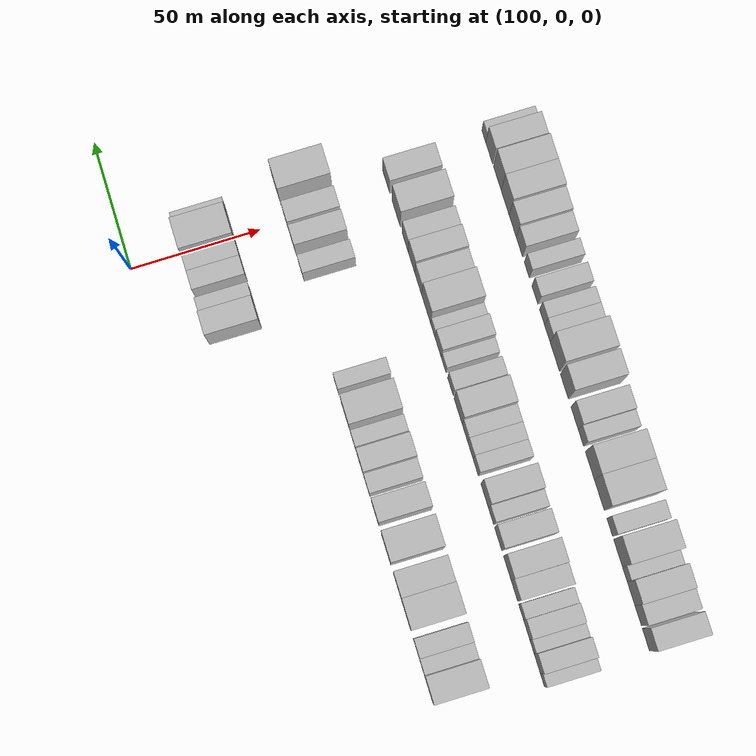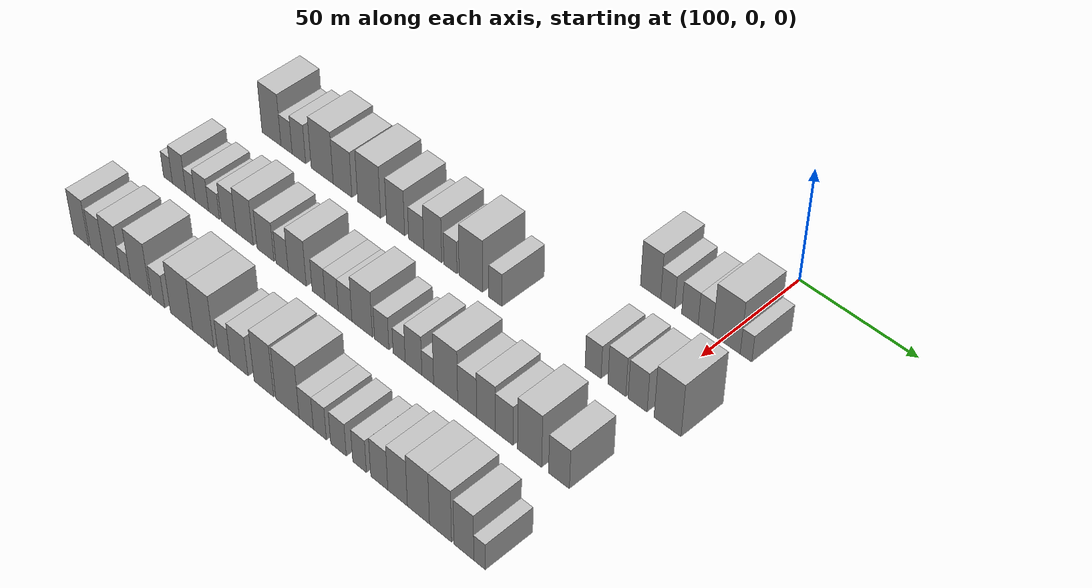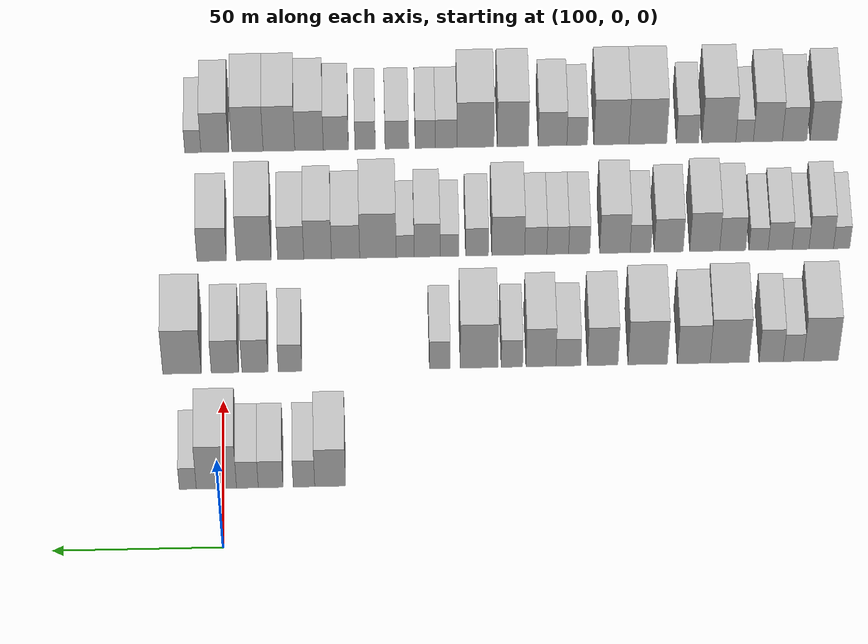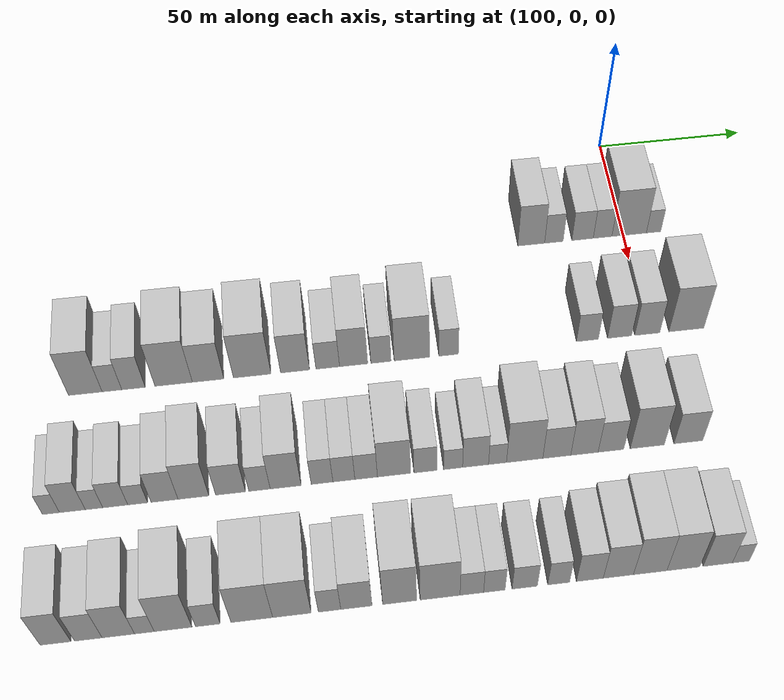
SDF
<sdf version="1.6">
 <world name="default">
  <model name="building_349">
   <static>1</static>
   <pose>130.0000 -31.3936 0 0.000000 0.000000 0.000000</pose>
   <link name="link">
    <pose>0 0 10.50 0 0 0</pose>
    <collision name="collision"><geometry><box><size>20.0000 9.1375 21.0000</size></box></geometry></collision>
    <visual name="visual">
     <cast_shadows>0</cast_shadows>
     <geometry><box><size>20.0000 9.1375 21.0000</size></box></geometry>
     <material>
      <script>
       <uri>model://HANNAS_wall/materials/scripts</uri>
       <uri>model://HANNAS_wall/materials/textures</uri>
       <name>vrc/HANNAS_wall</name>
      </script>
     </material>
    </visual>
   </link>
  </model>
  <model name="building_350">
   <static>1</static>
   <pose>130.0000 -23.6663 0 0.000000 0.000000 0.000000</pose>
   <link name="link">
    <pose>0 0 7.50 0 0 0</pose>
    <collision name="collision"><geometry><box><size>20.0000 6.3170 15.0000</size></box></geometry></collision>
    <visual name="visual">
     <cast_shadows>0</cast_shadows>
     <geometry><box><size>20.0000 6.3170 15.0000</size></box></geometry>
     <material>
      <script>
       <uri>model://HANNAS_wall/materials/scripts</uri>
       <uri>model://HANNAS_wall/materials/textures</uri>
       <name>vrc/HANNAS_wall</name>
      </script>
     </material>
    </visual>
   </link>
  </model>
  <model name="building_351">
   <static>1</static>
   <pose>130.0000 -13.8489 0 0.000000 0.000000 0.000000</pose>
   <link name="link">
    <pose>0 0 7.50 0 0 0</pose>
    <collision name="collision"><geometry><box><size>20.0000 7.3179 15.0000</size></box></geometry></collision>
    <visual name="visual">
     <cast_shadows>0</cast_shadows>
     <geometry><box><size>20.0000 7.3179 15.0000</size></box></geometry>
     <material>
      <script>
       <uri>model://HANNAS_wall/materials/scripts</uri>
       <uri>model://HANNAS_wall/materials/textures</uri>
       <name>vrc/HANNAS_wall</name>
      </script>
     </material>
    </visual>
   </link>
  </model>
  <model name="building_352">
   <static>1</static>
   <pose>130.0000 -6.9910 0 0.000000 0.000000 0.000000</pose>
   <link name="link">
    <pose>0 0 7.50 0 0 0</pose>
    <collision name="collision"><geometry><box><size>20.0000 6.3978 15.0000</size></box></geometry></collision>
    <visual name="visual">
     <cast_shadows>0</cast_shadows>
     <geometry><box><size>20.0000 6.3978 15.0000</size></box></geometry>
     <material>
      <script>
       <uri>model://HANNAS_wall/materials/scripts</uri>
       <uri>model://HANNAS_wall/materials/textures</uri>
       <name>vrc/HANNAS_wall</name>
      </script>
     </material>
    </visual>
   </link>
  </model>
  <model name="building_353">
   <static>1</static>
   <pose>130.0000 2.1304 0 0.000000 0.000000 0.000000</pose>
   <link name="link">
    <pose>0 0 12.00 0 0 0</pose>
    <collision name="collision"><geometry><box><size>20.0000 11.8450 24.0000</size></box></geometry></collision>
    <visual name="visual">
     <cast_shadows>0</cast_shadows>
     <geometry><box><size>20.0000 11.8450 24.0000</size></box></geometry>
     <material>
      <script>
       <uri>model://HANNAS_wall/materials/scripts</uri>
       <uri>model://HANNAS_wall/materials/textures</uri>
       <name>vrc/HANNAS_wall</name>
      </script>
     </material>
    </visual>
   </link>
  </model>
  <model name="building_354">
   <static>1</static>
   <pose>130.0000 10.5451 0 0.000000 0.000000 0.000000</pose>
   <link name="link">
    <pose>0 0 6.00 0 0 0</pose>
    <collision name="collision"><geometry><box><size>20.0000 4.9845 12.0000</size></box></geometry></collision>
    <visual name="visual">
     <cast_shadows>0</cast_shadows>
     <geometry><box><size>20.0000 4.9845 12.0000</size></box></geometry>
     <material>
      <script>
       <uri>model://HANNAS_wall/materials/scripts</uri>
       <uri>model://HANNAS_wall/materials/textures</uri>
       <name>vrc/HANNAS_wall</name>
      </script>
     </material>
    </visual>
   </link>
  </model>
  <model name="building_470">
   <static>1</static>
   <pose>170.0000 -178.7944 0 0.000000 0.000000 0.000000</pose>
   <link name="link">
    <pose>0 0 12.00 0 0 0</pose>
    <collision name="collision"><geometry><box><size>20.0000 10.3849 24.0000</size></box></geometry></collision>
    <visual name="visual">
     <cast_shadows>0</cast_shadows>
     <geometry><box><size>20.0000 10.3849 24.0000</size></box></geometry>
     <material>
      <script>
       <uri>model://HANNAS_wall/materials/scripts</uri>
       <uri>model://HANNAS_wall/materials/textures</uri>
       <name>vrc/HANNAS_wall</name>
      </script>
     </material>
    </visual>
   </link>
  </model>
  <model name="building_471">
   <static>1</static>
   <pose>170.0000 -170.5716 0 0.000000 0.000000 0.000000</pose>
   <link name="link">
    <pose>0 0 7.50 0 0 0</pose>
    <collision name="collision"><geometry><box><size>20.0000 6.0607 15.0000</size></box></geometry></collision>
    <visual name="visual">
     <cast_shadows>0</cast_shadows>
     <geometry><box><size>20.0000 6.0607 15.0000</size></box></geometry>
     <material>
      <script>
       <uri>model://HANNAS_wall/materials/scripts</uri>
       <uri>model://HANNAS_wall/materials/textures</uri>
       <name>vrc/HANNAS_wall</name>
      </script>
     </material>
    </visual>
   </link>
  </model>
  <model name="building_472">
   <static>1</static>
   <pose>170.0000 -163.9079 0 0.000000 0.000000 0.000000</pose>
   <link name="link">
    <pose>0 0 9.00 0 0 0</pose>
    <collision name="collision"><geometry><box><size>20.0000 7.2668 18.0000</size></box></geometry></collision>
    <visual name="visual">
     <cast_shadows>0</cast_shadows>
     <geometry><box><size>20.0000 7.2668 18.0000</size></box></geometry>
     <material>
      <script>
       <uri>model://HANNAS_wall/materials/scripts</uri>
       <uri>model://HANNAS_wall/materials/textures</uri>
       <name>vrc/HANNAS_wall</name>
      </script>
     </material>
    </visual>
   </link>
  </model>
  <model name="building_473">
   <static>1</static>
   <pose>170.0000 -151.4322 0 0.000000 0.000000 0.000000</pose>
   <link name="link">
    <pose>0 0 12.00 0 0 0</pose>
    <collision name="collision"><geometry><box><size>20.0000 11.6845 24.0000</size></box></geometry></collision>
    <visual name="visual">
     <cast_shadows>0</cast_shadows>
     <geometry><box><size>20.0000 11.6845 24.0000</size></box></geometry>
     <material>
      <script>
       <uri>model://HANNAS_wall/materials/scripts</uri>
       <uri>model://HANNAS_wall/materials/textures</uri>
       <name>vrc/HANNAS_wall</name>
      </script>
     </material>
    </visual>
   </link>
  </model>
  <model name="building_474">
   <static>1</static>
   <pose>170.0000 -140.6809 0 0.000000 0.000000 0.000000</pose>
   <link name="link">
    <pose>0 0 10.50 0 0 0</pose>
    <collision name="collision"><geometry><box><size>20.0000 9.8181 21.0000</size></box></geometry></collision>
    <visual name="visual">
     <cast_shadows>0</cast_shadows>
     <geometry><box><size>20.0000 9.8181 21.0000</size></box></geometry>
     <material>
      <script>
       <uri>model://HANNAS_wall/materials/scripts</uri>
       <uri>model://HANNAS_wall/materials/textures</uri>
       <name>vrc/HANNAS_wall</name>
      </script>
     </material>
    </visual>
   </link>
  </model>
  <model name="building_475">
   <static>1</static>
   <pose>170.0000 -126.8696 0 0.000000 0.000000 0.000000</pose>
   <link name="link">
    <pose>0 0 12.00 0 0 0</pose>
    <collision name="collision"><geometry><box><size>20.0000 11.8046 24.0000</size></box></geometry></collision>
    <visual name="visual">
     <cast_shadows>0</cast_shadows>
     <geometry><box><size>20.0000 11.8046 24.0000</size></box></geometry>
     <material>
      <script>
       <uri>model://HANNAS_wall/materials/scripts</uri>
       <uri>model://HANNAS_wall/materials/textures</uri>
       <name>vrc/HANNAS_wall</name>
      </script>
     </material>
    </visual>
   </link>
  </model>
  <model name="building_476">
   <static>1</static>
   <pose>170.0000 -113.3914 0 0.000000 0.000000 0.000000</pose>
   <link name="link">
    <pose>0 0 10.50 0 0 0</pose>
    <collision name="collision"><geometry><box><size>20.0000 9.1517 21.0000</size></box></geometry></collision>
    <visual name="visual">
     <cast_shadows>0</cast_shadows>
     <geometry><box><size>20.0000 9.1517 21.0000</size></box></geometry>
     <material>
      <script>
       <uri>model://HANNAS_wall/materials/scripts</uri>
       <uri>model://HANNAS_wall/materials/textures</uri>
       <name>vrc/HANNAS_wall</name>
      </script>
     </material>
    </visual>
   </link>
  </model>
  <model name="building_477">
   <static>1</static>
   <pose>170.0000 -103.0781 0 0.000000 0.000000 0.000000</pose>
   <link name="link">
    <pose>0 0 7.50 0 0 0</pose>
    <collision name="collision"><geometry><box><size>20.0000 7.4750 15.0000</size></box></geometry></collision>
    <visual name="visual">
     <cast_shadows>0</cast_shadows>
     <geometry><box><size>20.0000 7.4750 15.0000</size></box></geometry>
     <material>
      <script>
       <uri>model://HANNAS_wall/materials/scripts</uri>
       <uri>model://HANNAS_wall/materials/textures</uri>
       <name>vrc/HANNAS_wall</name>
      </script>
     </material>
    </visual>
   </link>
  </model>
  <model name="building_478">
   <static>1</static>
   <pose>170.0000 -94.8814 0 0.000000 0.000000 0.000000</pose>
   <link name="link">
    <pose>0 0 10.50 0 0 0</pose>
    <collision name="collision"><geometry><box><size>20.0000 8.9184 21.0000</size></box></geometry></collision>
    <visual name="visual">
     <cast_shadows>0</cast_shadows>
     <geometry><box><size>20.0000 8.9184 21.0000</size></box></geometry>
     <material>
      <script>
       <uri>model://HANNAS_wall/materials/scripts</uri>
       <uri>model://HANNAS_wall/materials/textures</uri>
       <name>vrc/HANNAS_wall</name>
      </script>
     </material>
    </visual>
   </link>
  </model>
  <model name="building_479">
   <static>1</static>
   <pose>170.0000 -86.2132 0 0.000000 0.000000 0.000000</pose>
   <link name="link">
    <pose>0 0 7.50 0 0 0</pose>
    <collision name="collision"><geometry><box><size>20.0000 6.4179 15.0000</size></box></geometry></collision>
    <visual name="visual">
     <cast_shadows>0</cast_shadows>
     <geometry><box><size>20.0000 6.4179 15.0000</size></box></geometry>
     <material>
      <script>
       <uri>model://HANNAS_wall/materials/scripts</uri>
       <uri>model://HANNAS_wall/materials/textures</uri>
       <name>vrc/HANNAS_wall</name>
      </script>
     </material>
    </visual>
   </link>
  </model>
  <model name="building_480">
   <static>1</static>
   <pose>170.0000 -76.3751 0 0.000000 0.000000 0.000000</pose>
   <link name="link">
    <pose>0 0 12.00 0 0 0</pose>
    <collision name="collision"><geometry><box><size>20.0000 11.2582 24.0000</size></box></geometry></collision>
    <visual name="visual">
     <cast_shadows>0</cast_shadows>
     <geometry><box><size>20.0000 11.2582 24.0000</size></box></geometry>
     <material>
      <script>
       <uri>model://HANNAS_wall/materials/scripts</uri>
       <uri>model://HANNAS_wall/materials/textures</uri>
       <name>vrc/HANNAS_wall</name>
      </script>
     </material>
    </visual>
   </link>
  </model>
  <model name="building_481">
   <static>1</static>
   <pose>170.0000 -64.6272 0 0.000000 0.000000 0.000000</pose>
   <link name="link">
    <pose>0 0 7.50 0 0 0</pose>
    <collision name="collision"><geometry><box><size>20.0000 6.2377 15.0000</size></box></geometry></collision>
    <visual name="visual">
     <cast_shadows>0</cast_shadows>
     <geometry><box><size>20.0000 6.2377 15.0000</size></box></geometry>
     <material>
      <script>
       <uri>model://HANNAS_wall/materials/scripts</uri>
       <uri>model://HANNAS_wall/materials/textures</uri>
       <name>vrc/HANNAS_wall</name>
      </script>
     </material>
    </visual>
   </link>
  </model>
  <model name="building_482">
   <static>1</static>
   <pose>170.0000 -19.8377 0 0.000000 0.000000 0.000000</pose>
   <link name="link">
    <pose>0 0 7.50 0 0 0</pose>
    <collision name="collision"><geometry><box><size>20.0000 7.1137 15.0000</size></box></geometry></collision>
    <visual name="visual">
     <cast_shadows>0</cast_shadows>
     <geometry><box><size>20.0000 7.1137 15.0000</size></box></geometry>
     <material>
      <script>
       <uri>model://HANNAS_wall/materials/scripts</uri>
       <uri>model://HANNAS_wall/materials/textures</uri>
       <name>vrc/HANNAS_wall</name>
      </script>
     </material>
    </visual>
   </link>
  </model>
  <model name="building_483">
   <static>1</static>
   <pose>170.0000 -9.3488 0 0.000000 0.000000 0.000000</pose>
   <link name="link">
    <pose>0 0 9.00 0 0 0</pose>
    <collision name="collision"><geometry><box><size>20.0000 7.8642 18.0000</size></box></geometry></collision>
    <visual name="visual">
     <cast_shadows>0</cast_shadows>
     <geometry><box><size>20.0000 7.8642 18.0000</size></box></geometry>
     <material>
      <script>
       <uri>model://HANNAS_wall/materials/scripts</uri>
       <uri>model://HANNAS_wall/materials/textures</uri>
       <name>vrc/HANNAS_wall</name>
      </script>
     </material>
    </visual>
   </link>
  </model>
  <model name="building_484">
   <static>1</static>
   <pose>170.0000 -0.3206 0 0.000000 0.000000 0.000000</pose>
   <link name="link">
    <pose>0 0 9.00 0 0 0</pose>
    <collision name="collision"><geometry><box><size>20.0000 8.1921 18.0000</size></box></geometry></collision>
    <visual name="visual">
     <cast_shadows>0</cast_shadows>
     <geometry><box><size>20.0000 8.1921 18.0000</size></box></geometry>
     <material>
      <script>
       <uri>model://HANNAS_wall/materials/scripts</uri>
       <uri>model://HANNAS_wall/materials/textures</uri>
       <name>vrc/HANNAS_wall</name>
      </script>
     </material>
    </visual>
   </link>
  </model>
  <model name="building_485">
   <static>1</static>
   <pose>170.0000 12.5129 0 0.000000 0.000000 0.000000</pose>
   <link name="link">
    <pose>0 0 12.00 0 0 0</pose>
    <collision name="collision"><geometry><box><size>20.0000 11.4749 24.0000</size></box></geometry></collision>
    <visual name="visual">
     <cast_shadows>0</cast_shadows>
     <geometry><box><size>20.0000 11.4749 24.0000</size></box></geometry>
     <material>
      <script>
       <uri>model://HANNAS_wall/materials/scripts</uri>
       <uri>model://HANNAS_wall/materials/textures</uri>
       <name>vrc/HANNAS_wall</name>
      </script>
     </material>
    </visual>
   </link>
  </model>
  <model name="building_598">
   <static>1</static>
   <pose>210.0000 -187.8631 0 0.000000 0.000000 0.000000</pose>
   <link name="link">
    <pose>0 0 6.00 0 0 0</pose>
    <collision name="collision"><geometry><box><size>20.0000 4.9526 12.0000</size></box></geometry></collision>
    <visual name="visual">
     <cast_shadows>0</cast_shadows>
     <geometry><box><size>20.0000 4.9526 12.0000</size></box></geometry>
     <material>
      <script>
       <uri>model://HANNAS_wall/materials/scripts</uri>
       <uri>model://HANNAS_wall/materials/textures</uri>
       <name>vrc/HANNAS_wall</name>
      </script>
     </material>
    </visual>
   </link>
  </model>
  <model name="building_599">
   <static>1</static>
   <pose>210.0000 -181.6386 0 0.000000 0.000000 0.000000</pose>
   <link name="link">
    <pose>0 0 9.00 0 0 0</pose>
    <collision name="collision"><geometry><box><size>20.0000 7.4965 18.0000</size></box></geometry></collision>
    <visual name="visual">
     <cast_shadows>0</cast_shadows>
     <geometry><box><size>20.0000 7.4965 18.0000</size></box></geometry>
     <material>
      <script>
       <uri>model://HANNAS_wall/materials/scripts</uri>
       <uri>model://HANNAS_wall/materials/textures</uri>
       <name>vrc/HANNAS_wall</name>
      </script>
     </material>
    </visual>
   </link>
  </model>
  <model name="building_600">
   <static>1</static>
   <pose>210.0000 -175.3336 0 0.000000 0.000000 0.000000</pose>
   <link name="link">
    <pose>0 0 6.00 0 0 0</pose>
    <collision name="collision"><geometry><box><size>20.0000 5.1136 12.0000</size></box></geometry></collision>
    <visual name="visual">
     <cast_shadows>0</cast_shadows>
     <geometry><box><size>20.0000 5.1136 12.0000</size></box></geometry>
     <material>
      <script>
       <uri>model://HANNAS_wall/materials/scripts</uri>
       <uri>model://HANNAS_wall/materials/textures</uri>
       <name>vrc/HANNAS_wall</name>
      </script>
     </material>
    </visual>
   </link>
  </model>
  <model name="building_601">
   <static>1</static>
   <pose>210.0000 -169.1165 0 0.000000 0.000000 0.000000</pose>
   <link name="link">
    <pose>0 0 7.50 0 0 0</pose>
    <collision name="collision"><geometry><box><size>20.0000 7.3206 15.0000</size></box></geometry></collision>
    <visual name="visual">
     <cast_shadows>0</cast_shadows>
     <geometry><box><size>20.0000 7.3206 15.0000</size></box></geometry>
     <material>
      <script>
       <uri>model://HANNAS_wall/materials/scripts</uri>
       <uri>model://HANNAS_wall/materials/textures</uri>
       <name>vrc/HANNAS_wall</name>
      </script>
     </material>
    </visual>
   </link>
  </model>
  <model name="building_602">
   <static>1</static>
   <pose>210.0000 -162.5438 0 0.000000 0.000000 0.000000</pose>
   <link name="link">
    <pose>0 0 6.00 0 0 0</pose>
    <collision name="collision"><geometry><box><size>20.0000 5.8247 12.0000</size></box></geometry></collision>
    <visual name="visual">
     <cast_shadows>0</cast_shadows>
     <geometry><box><size>20.0000 5.8247 12.0000</size></box></geometry>
     <material>
      <script>
       <uri>model://HANNAS_wall/materials/scripts</uri>
       <uri>model://HANNAS_wall/materials/textures</uri>
       <name>vrc/HANNAS_wall</name>
      </script>
     </material>
    </visual>
   </link>
  </model>
  <model name="building_603">
   <static>1</static>
   <pose>210.0000 -154.6650 0 0.000000 0.000000 0.000000</pose>
   <link name="link">
    <pose>0 0 9.00 0 0 0</pose>
    <collision name="collision"><geometry><box><size>20.0000 7.9329 18.0000</size></box></geometry></collision>
    <visual name="visual">
     <cast_shadows>0</cast_shadows>
     <geometry><box><size>20.0000 7.9329 18.0000</size></box></geometry>
     <material>
      <script>
       <uri>model://HANNAS_wall/materials/scripts</uri>
       <uri>model://HANNAS_wall/materials/textures</uri>
       <name>vrc/HANNAS_wall</name>
      </script>
     </material>
    </visual>
   </link>
  </model>
  <model name="building_604">
   <static>1</static>
   <pose>210.0000 -146.1417 0 0.000000 0.000000 0.000000</pose>
   <link name="link">
    <pose>0 0 10.50 0 0 0</pose>
    <collision name="collision"><geometry><box><size>20.0000 9.1138 21.0000</size></box></geometry></collision>
    <visual name="visual">
     <cast_shadows>0</cast_shadows>
     <geometry><box><size>20.0000 9.1138 21.0000</size></box></geometry>
     <material>
      <script>
       <uri>model://HANNAS_wall/materials/scripts</uri>
       <uri>model://HANNAS_wall/materials/textures</uri>
       <name>vrc/HANNAS_wall</name>
      </script>
     </material>
    </visual>
   </link>
  </model>
  <model name="building_605">
   <static>1</static>
   <pose>210.0000 -135.1656 0 0.000000 0.000000 0.000000</pose>
   <link name="link">
    <pose>0 0 9.00 0 0 0</pose>
    <collision name="collision"><geometry><box><size>20.0000 8.8383 18.0000</size></box></geometry></collision>
    <visual name="visual">
     <cast_shadows>0</cast_shadows>
     <geometry><box><size>20.0000 8.8383 18.0000</size></box></geometry>
     <material>
      <script>
       <uri>model://HANNAS_wall/materials/scripts</uri>
       <uri>model://HANNAS_wall/materials/textures</uri>
       <name>vrc/HANNAS_wall</name>
      </script>
     </material>
    </visual>
   </link>
  </model>
  <model name="building_606">
   <static>1</static>
   <pose>210.0000 -126.5722 0 0.000000 0.000000 0.000000</pose>
   <link name="link">
    <pose>0 0 7.50 0 0 0</pose>
    <collision name="collision"><geometry><box><size>20.0000 6.3486 15.0000</size></box></geometry></collision>
    <visual name="visual">
     <cast_shadows>0</cast_shadows>
     <geometry><box><size>20.0000 6.3486 15.0000</size></box></geometry>
     <material>
      <script>
       <uri>model://HANNAS_wall/materials/scripts</uri>
       <uri>model://HANNAS_wall/materials/textures</uri>
       <name>vrc/HANNAS_wall</name>
      </script>
     </material>
    </visual>
   </link>
  </model>
  <model name="building_607">
   <static>1</static>
   <pose>210.0000 -118.7902 0 0.000000 0.000000 0.000000</pose>
   <link name="link">
    <pose>0 0 10.50 0 0 0</pose>
    <collision name="collision"><geometry><box><size>20.0000 9.2154 21.0000</size></box></geometry></collision>
    <visual name="visual">
     <cast_shadows>0</cast_shadows>
     <geometry><box><size>20.0000 9.2154 21.0000</size></box></geometry>
     <material>
      <script>
       <uri>model://HANNAS_wall/materials/scripts</uri>
       <uri>model://HANNAS_wall/materials/textures</uri>
       <name>vrc/HANNAS_wall</name>
      </script>
     </material>
    </visual>
   </link>
  </model>
  <model name="building_608">
   <static>1</static>
   <pose>210.0000 -107.9401 0 0.000000 0.000000 0.000000</pose>
   <link name="link">
    <pose>0 0 7.50 0 0 0</pose>
    <collision name="collision"><geometry><box><size>20.0000 6.4849 15.0000</size></box></geometry></collision>
    <visual name="visual">
     <cast_shadows>0</cast_shadows>
     <geometry><box><size>20.0000 6.4849 15.0000</size></box></geometry>
     <material>
      <script>
       <uri>model://HANNAS_wall/materials/scripts</uri>
       <uri>model://HANNAS_wall/materials/textures</uri>
       <name>vrc/HANNAS_wall</name>
      </script>
     </material>
    </visual>
   </link>
  </model>
  <model name="building_609">
   <static>1</static>
   <pose>210.0000 -101.4058 0 0.000000 0.000000 0.000000</pose>
   <link name="link">
    <pose>0 0 7.50 0 0 0</pose>
    <collision name="collision"><geometry><box><size>20.0000 6.5837 15.0000</size></box></geometry></collision>
    <visual name="visual">
     <cast_shadows>0</cast_shadows>
     <geometry><box><size>20.0000 6.5837 15.0000</size></box></geometry>
     <material>
      <script>
       <uri>model://HANNAS_wall/materials/scripts</uri>
       <uri>model://HANNAS_wall/materials/textures</uri>
       <name>vrc/HANNAS_wall</name>
      </script>
     </material>
    </visual>
   </link>
  </model>
  <model name="building_610">
   <static>1</static>
   <pose>210.0000 -94.7305 0 0.000000 0.000000 0.000000</pose>
   <link name="link">
    <pose>0 0 7.50 0 0 0</pose>
    <collision name="collision"><geometry><box><size>20.0000 6.7668 15.0000</size></box></geometry></collision>
    <visual name="visual">
     <cast_shadows>0</cast_shadows>
     <geometry><box><size>20.0000 6.7668 15.0000</size></box></geometry>
     <material>
      <script>
       <uri>model://HANNAS_wall/materials/scripts</uri>
       <uri>model://HANNAS_wall/materials/textures</uri>
       <name>vrc/HANNAS_wall</name>
      </script>
     </material>
    </visual>
   </link>
  </model>
  <model name="building_611">
   <static>1</static>
   <pose>210.0000 -86.3413 0 0.000000 0.000000 0.000000</pose>
   <link name="link">
    <pose>0 0 10.50 0 0 0</pose>
    <collision name="collision"><geometry><box><size>20.0000 10.0115 21.0000</size></box></geometry></collision>
    <visual name="visual">
     <cast_shadows>0</cast_shadows>
     <geometry><box><size>20.0000 10.0115 21.0000</size></box></geometry>
     <material>
      <script>
       <uri>model://HANNAS_wall/materials/scripts</uri>
       <uri>model://HANNAS_wall/materials/textures</uri>
       <name>vrc/HANNAS_wall</name>
      </script>
     </material>
    </visual>
   </link>
  </model>
  <model name="building_612">
   <static>1</static>
   <pose>210.0000 -76.8689 0 0.000000 0.000000 0.000000</pose>
   <link name="link">
    <pose>0 0 7.50 0 0 0</pose>
    <collision name="collision"><geometry><box><size>20.0000 6.9334 15.0000</size></box></geometry></collision>
    <visual name="visual">
     <cast_shadows>0</cast_shadows>
     <geometry><box><size>20.0000 6.9334 15.0000</size></box></geometry>
     <material>
      <script>
       <uri>model://HANNAS_wall/materials/scripts</uri>
       <uri>model://HANNAS_wall/materials/textures</uri>
       <name>vrc/HANNAS_wall</name>
      </script>
     </material>
    </visual>
   </link>
  </model>
  <model name="building_613">
   <static>1</static>
   <pose>210.0000 -68.5113 0 0.000000 0.000000 0.000000</pose>
   <link name="link">
    <pose>0 0 6.00 0 0 0</pose>
    <collision name="collision"><geometry><box><size>20.0000 5.7816 12.0000</size></box></geometry></collision>
    <visual name="visual">
     <cast_shadows>0</cast_shadows>
     <geometry><box><size>20.0000 5.7816 12.0000</size></box></geometry>
     <material>
      <script>
       <uri>model://HANNAS_wall/materials/scripts</uri>
       <uri>model://HANNAS_wall/materials/textures</uri>
       <name>vrc/HANNAS_wall</name>
      </script>
     </material>
    </visual>
   </link>
  </model>
  <model name="building_614">
   <static>1</static>
   <pose>210.0000 -61.6804 0 0.000000 0.000000 0.000000</pose>
   <link name="link">
    <pose>0 0 9.00 0 0 0</pose>
    <collision name="collision"><geometry><box><size>20.0000 7.8803 18.0000</size></box></geometry></collision>
    <visual name="visual">
     <cast_shadows>0</cast_shadows>
     <geometry><box><size>20.0000 7.8803 18.0000</size></box></geometry>
     <material>
      <script>
       <uri>model://HANNAS_wall/materials/scripts</uri>
       <uri>model://HANNAS_wall/materials/textures</uri>
       <name>vrc/HANNAS_wall</name>
      </script>
     </material>
    </visual>
   </link>
  </model>
  <model name="building_615">
   <static>1</static>
   <pose>210.0000 -55.0049 0 0.000000 0.000000 0.000000</pose>
   <link name="link">
    <pose>0 0 6.00 0 0 0</pose>
    <collision name="collision"><geometry><box><size>20.0000 5.4707 12.0000</size></box></geometry></collision>
    <visual name="visual">
     <cast_shadows>0</cast_shadows>
     <geometry><box><size>20.0000 5.4707 12.0000</size></box></geometry>
     <material>
      <script>
       <uri>model://HANNAS_wall/materials/scripts</uri>
       <uri>model://HANNAS_wall/materials/textures</uri>
       <name>vrc/HANNAS_wall</name>
      </script>
     </material>
    </visual>
   </link>
  </model>
  <model name="building_616">
   <static>1</static>
   <pose>210.0000 -46.7229 0 0.000000 0.000000 0.000000</pose>
   <link name="link">
    <pose>0 0 12.00 0 0 0</pose>
    <collision name="collision"><geometry><box><size>20.0000 11.0932 24.0000</size></box></geometry></collision>
    <visual name="visual">
     <cast_shadows>0</cast_shadows>
     <geometry><box><size>20.0000 11.0932 24.0000</size></box></geometry>
     <material>
      <script>
       <uri>model://HANNAS_wall/materials/scripts</uri>
       <uri>model://HANNAS_wall/materials/textures</uri>
       <name>vrc/HANNAS_wall</name>
      </script>
     </material>
    </visual>
   </link>
  </model>
  <model name="building_617">
   <static>1</static>
   <pose>210.0000 -36.8878 0 0.000000 0.000000 0.000000</pose>
   <link name="link">
    <pose>0 0 9.00 0 0 0</pose>
    <collision name="collision"><geometry><box><size>20.0000 8.5770 18.0000</size></box></geometry></collision>
    <visual name="visual">
     <cast_shadows>0</cast_shadows>
     <geometry><box><size>20.0000 8.5770 18.0000</size></box></geometry>
     <material>
      <script>
       <uri>model://HANNAS_wall/materials/scripts</uri>
       <uri>model://HANNAS_wall/materials/textures</uri>
       <name>vrc/HANNAS_wall</name>
      </script>
     </material>
    </visual>
   </link>
  </model>
  <model name="building_618">
   <static>1</static>
   <pose>210.0000 -28.3944 0 0.000000 0.000000 0.000000</pose>
   <link name="link">
    <pose>0 0 10.50 0 0 0</pose>
    <collision name="collision"><geometry><box><size>20.0000 8.4099 21.0000</size></box></geometry></collision>
    <visual name="visual">
     <cast_shadows>0</cast_shadows>
     <geometry><box><size>20.0000 8.4099 21.0000</size></box></geometry>
     <material>
      <script>
       <uri>model://HANNAS_wall/materials/scripts</uri>
       <uri>model://HANNAS_wall/materials/textures</uri>
       <name>vrc/HANNAS_wall</name>
      </script>
     </material>
    </visual>
   </link>
  </model>
  <model name="building_619">
   <static>1</static>
   <pose>210.0000 -20.2342 0 0.000000 0.000000 0.000000</pose>
   <link name="link">
    <pose>0 0 9.00 0 0 0</pose>
    <collision name="collision"><geometry><box><size>20.0000 7.9104 18.0000</size></box></geometry></collision>
    <visual name="visual">
     <cast_shadows>0</cast_shadows>
     <geometry><box><size>20.0000 7.9104 18.0000</size></box></geometry>
     <material>
      <script>
       <uri>model://HANNAS_wall/materials/scripts</uri>
       <uri>model://HANNAS_wall/materials/textures</uri>
       <name>vrc/HANNAS_wall</name>
      </script>
     </material>
    </visual>
   </link>
  </model>
  <model name="building_620">
   <static>1</static>
   <pose>210.0000 -9.0103 0 0.000000 0.000000 0.000000</pose>
   <link name="link">
    <pose>0 0 12.00 0 0 0</pose>
    <collision name="collision"><geometry><box><size>20.0000 10.5374 24.0000</size></box></geometry></collision>
    <visual name="visual">
     <cast_shadows>0</cast_shadows>
     <geometry><box><size>20.0000 10.5374 24.0000</size></box></geometry>
     <material>
      <script>
       <uri>model://HANNAS_wall/materials/scripts</uri>
       <uri>model://HANNAS_wall/materials/textures</uri>
       <name>vrc/HANNAS_wall</name>
      </script>
     </material>
    </visual>
   </link>
  </model>
  <model name="building_621">
   <static>1</static>
   <pose>210.0000 3.7434 0 0.000000 0.000000 0.000000</pose>
   <link name="link">
    <pose>0 0 9.00 0 0 0</pose>
    <collision name="collision"><geometry><box><size>20.0000 8.9698 18.0000</size></box></geometry></collision>
    <visual name="visual">
     <cast_shadows>0</cast_shadows>
     <geometry><box><size>20.0000 8.9698 18.0000</size></box></geometry>
     <material>
      <script>
       <uri>model://HANNAS_wall/materials/scripts</uri>
       <uri>model://HANNAS_wall/materials/textures</uri>
       <name>vrc/HANNAS_wall</name>
      </script>
     </material>
    </visual>
   </link>
  </model>
  <model name="building_729">
   <static>1</static>
   <pose>250.0000 -185.1196 0 0.000000 0.000000 0.000000</pose>
   <link name="link">
    <pose>0 0 10.50 0 0 0</pose>
    <collision name="collision"><geometry><box><size>20.0000 8.4349 21.0000</size></box></geometry></collision>
    <visual name="visual">
     <cast_shadows>0</cast_shadows>
     <geometry><box><size>20.0000 8.4349 21.0000</size></box></geometry>
     <material>
      <script>
       <uri>model://HANNAS_wall/materials/scripts</uri>
       <uri>model://HANNAS_wall/materials/textures</uri>
       <name>vrc/HANNAS_wall</name>
      </script>
     </material>
    </visual>
   </link>
  </model>
  <model name="building_730">
   <static>1</static>
   <pose>250.0000 -176.1088 0 0.000000 0.000000 0.000000</pose>
   <link name="link">
    <pose>0 0 9.00 0 0 0</pose>
    <collision name="collision"><geometry><box><size>20.0000 7.5868 18.0000</size></box></geometry></collision>
    <visual name="visual">
     <cast_shadows>0</cast_shadows>
     <geometry><box><size>20.0000 7.5868 18.0000</size></box></geometry>
     <material>
      <script>
       <uri>model://HANNAS_wall/materials/scripts</uri>
       <uri>model://HANNAS_wall/materials/textures</uri>
       <name>vrc/HANNAS_wall</name>
      </script>
     </material>
    </visual>
   </link>
  </model>
  <model name="building_731">
   <static>1</static>
   <pose>250.0000 -167.8354 0 0.000000 0.000000 0.000000</pose>
   <link name="link">
    <pose>0 0 10.50 0 0 0</pose>
    <collision name="collision"><geometry><box><size>20.0000 8.9598 21.0000</size></box></geometry></collision>
    <visual name="visual">
     <cast_shadows>0</cast_shadows>
     <geometry><box><size>20.0000 8.9598 21.0000</size></box></geometry>
     <material>
      <script>
       <uri>model://HANNAS_wall/materials/scripts</uri>
       <uri>model://HANNAS_wall/materials/textures</uri>
       <name>vrc/HANNAS_wall</name>
      </script>
     </material>
    </visual>
   </link>
  </model>
  <model name="building_732">
   <static>1</static>
   <pose>250.0000 -160.6302 0 0.000000 0.000000 0.000000</pose>
   <link name="link">
    <pose>0 0 6.00 0 0 0</pose>
    <collision name="collision"><geometry><box><size>20.0000 5.4507 12.0000</size></box></geometry></collision>
    <visual name="visual">
     <cast_shadows>0</cast_shadows>
     <geometry><box><size>20.0000 5.4507 12.0000</size></box></geometry>
     <material>
      <script>
       <uri>model://HANNAS_wall/materials/scripts</uri>
       <uri>model://HANNAS_wall/materials/textures</uri>
       <name>vrc/HANNAS_wall</name>
      </script>
     </material>
    </visual>
   </link>
  </model>
  <model name="building_733">
   <static>1</static>
   <pose>250.0000 -152.6688 0 0.000000 0.000000 0.000000</pose>
   <link name="link">
    <pose>0 0 12.00 0 0 0</pose>
    <collision name="collision"><geometry><box><size>20.0000 10.4721 24.0000</size></box></geometry></collision>
    <visual name="visual">
     <cast_shadows>0</cast_shadows>
     <geometry><box><size>20.0000 10.4721 24.0000</size></box></geometry>
     <material>
      <script>
       <uri>model://HANNAS_wall/materials/scripts</uri>
       <uri>model://HANNAS_wall/materials/textures</uri>
       <name>vrc/HANNAS_wall</name>
      </script>
     </material>
    </visual>
   </link>
  </model>
  <model name="building_734">
   <static>1</static>
   <pose>250.0000 -142.9962 0 0.000000 0.000000 0.000000</pose>
   <link name="link">
    <pose>0 0 7.50 0 0 0</pose>
    <collision name="collision"><geometry><box><size>20.0000 6.8733 15.0000</size></box></geometry></collision>
    <visual name="visual">
     <cast_shadows>0</cast_shadows>
     <geometry><box><size>20.0000 6.8733 15.0000</size></box></geometry>
     <material>
      <script>
       <uri>model://HANNAS_wall/materials/scripts</uri>
       <uri>model://HANNAS_wall/materials/textures</uri>
       <name>vrc/HANNAS_wall</name>
      </script>
     </material>
    </visual>
   </link>
  </model>
  <model name="building_735">
   <static>1</static>
   <pose>250.0000 -130.7201 0 0.000000 0.000000 0.000000</pose>
   <link name="link">
    <pose>0 0 12.00 0 0 0</pose>
    <collision name="collision"><geometry><box><size>20.0000 11.6788 24.0000</size></box></geometry></collision>
    <visual name="visual">
     <cast_shadows>0</cast_shadows>
     <geometry><box><size>20.0000 11.6788 24.0000</size></box></geometry>
     <material>
      <script>
       <uri>model://HANNAS_wall/materials/scripts</uri>
       <uri>model://HANNAS_wall/materials/textures</uri>
       <name>vrc/HANNAS_wall</name>
      </script>
     </material>
    </visual>
   </link>
  </model>
  <model name="building_736">
   <static>1</static>
   <pose>250.0000 -119.4681 0 0.000000 0.000000 0.000000</pose>
   <link name="link">
    <pose>0 0 12.00 0 0 0</pose>
    <collision name="collision"><geometry><box><size>20.0000 10.8252 24.0000</size></box></geometry></collision>
    <visual name="visual">
     <cast_shadows>0</cast_shadows>
     <geometry><box><size>20.0000 10.8252 24.0000</size></box></geometry>
     <material>
      <script>
       <uri>model://HANNAS_wall/materials/scripts</uri>
       <uri>model://HANNAS_wall/materials/textures</uri>
       <name>vrc/HANNAS_wall</name>
      </script>
     </material>
    </visual>
   </link>
  </model>
  <model name="building_737">
   <static>1</static>
   <pose>250.0000 -108.8877 0 0.000000 0.000000 0.000000</pose>
   <link name="link">
    <pose>0 0 7.50 0 0 0</pose>
    <collision name="collision"><geometry><box><size>20.0000 6.3354 15.0000</size></box></geometry></collision>
    <visual name="visual">
     <cast_shadows>0</cast_shadows>
     <geometry><box><size>20.0000 6.3354 15.0000</size></box></geometry>
     <material>
      <script>
       <uri>model://HANNAS_wall/materials/scripts</uri>
       <uri>model://HANNAS_wall/materials/textures</uri>
       <name>vrc/HANNAS_wall</name>
      </script>
     </material>
    </visual>
   </link>
  </model>
  <model name="building_738">
   <static>1</static>
   <pose>250.0000 -101.2846 0 0.000000 0.000000 0.000000</pose>
   <link name="link">
    <pose>0 0 9.00 0 0 0</pose>
    <collision name="collision"><geometry><box><size>20.0000 8.8707 18.0000</size></box></geometry></collision>
    <visual name="visual">
     <cast_shadows>0</cast_shadows>
     <geometry><box><size>20.0000 8.8707 18.0000</size></box></geometry>
     <material>
      <script>
       <uri>model://HANNAS_wall/materials/scripts</uri>
       <uri>model://HANNAS_wall/materials/textures</uri>
       <name>vrc/HANNAS_wall</name>
      </script>
     </material>
    </visual>
   </link>
  </model>
  <model name="building_739">
   <static>1</static>
   <pose>250.0000 -89.0202 0 0.000000 0.000000 0.000000</pose>
   <link name="link">
    <pose>0 0 12.00 0 0 0</pose>
    <collision name="collision"><geometry><box><size>20.0000 9.6581 24.0000</size></box></geometry></collision>
    <visual name="visual">
     <cast_shadows>0</cast_shadows>
     <geometry><box><size>20.0000 9.6581 24.0000</size></box></geometry>
     <material>
      <script>
       <uri>model://HANNAS_wall/materials/scripts</uri>
       <uri>model://HANNAS_wall/materials/textures</uri>
       <name>vrc/HANNAS_wall</name>
      </script>
     </material>
    </visual>
   </link>
  </model>
  <model name="building_740">
   <static>1</static>
   <pose>250.0000 -77.5066 0 0.000000 0.000000 0.000000</pose>
   <link name="link">
    <pose>0 0 12.00 0 0 0</pose>
    <collision name="collision"><geometry><box><size>20.0000 11.3689 24.0000</size></box></geometry></collision>
    <visual name="visual">
     <cast_shadows>0</cast_shadows>
     <geometry><box><size>20.0000 11.3689 24.0000</size></box></geometry>
     <material>
      <script>
       <uri>model://HANNAS_wall/materials/scripts</uri>
       <uri>model://HANNAS_wall/materials/textures</uri>
       <name>vrc/HANNAS_wall</name>
      </script>
     </material>
    </visual>
   </link>
  </model>
  <model name="building_741">
   <static>1</static>
   <pose>250.0000 -68.4458 0 0.000000 0.000000 0.000000</pose>
   <link name="link">
    <pose>0 0 7.50 0 0 0</pose>
    <collision name="collision"><geometry><box><size>20.0000 6.7527 15.0000</size></box></geometry></collision>
    <visual name="visual">
     <cast_shadows>0</cast_shadows>
     <geometry><box><size>20.0000 6.7527 15.0000</size></box></geometry>
     <material>
      <script>
       <uri>model://HANNAS_wall/materials/scripts</uri>
       <uri>model://HANNAS_wall/materials/textures</uri>
       <name>vrc/HANNAS_wall</name>
      </script>
     </material>
    </visual>
   </link>
  </model>
  <model name="building_742">
   <static>1</static>
   <pose>250.0000 -61.9823 0 0.000000 0.000000 0.000000</pose>
   <link name="link">
    <pose>0 0 7.50 0 0 0</pose>
    <collision name="collision"><geometry><box><size>20.0000 6.1743 15.0000</size></box></geometry></collision>
    <visual name="visual">
     <cast_shadows>0</cast_shadows>
     <geometry><box><size>20.0000 6.1743 15.0000</size></box></geometry>
     <material>
      <script>
       <uri>model://HANNAS_wall/materials/scripts</uri>
       <uri>model://HANNAS_wall/materials/textures</uri>
       <name>vrc/HANNAS_wall</name>
      </script>
     </material>
    </visual>
   </link>
  </model>
  <model name="building_743">
   <static>1</static>
   <pose>250.0000 -53.2470 0 0.000000 0.000000 0.000000</pose>
   <link name="link">
    <pose>0 0 7.50 0 0 0</pose>
    <collision name="collision"><geometry><box><size>20.0000 7.2965 15.0000</size></box></geometry></collision>
    <visual name="visual">
     <cast_shadows>0</cast_shadows>
     <geometry><box><size>20.0000 7.2965 15.0000</size></box></geometry>
     <material>
      <script>
       <uri>model://HANNAS_wall/materials/scripts</uri>
       <uri>model://HANNAS_wall/materials/textures</uri>
       <name>vrc/HANNAS_wall</name>
      </script>
     </material>
    </visual>
   </link>
  </model>
  <model name="building_744">
   <static>1</static>
   <pose>250.0000 -43.4494 0 0.000000 0.000000 0.000000</pose>
   <link name="link">
    <pose>0 0 7.50 0 0 0</pose>
    <collision name="collision"><geometry><box><size>20.0000 6.2987 15.0000</size></box></geometry></collision>
    <visual name="visual">
     <cast_shadows>0</cast_shadows>
     <geometry><box><size>20.0000 6.2987 15.0000</size></box></geometry>
     <material>
      <script>
       <uri>model://HANNAS_wall/materials/scripts</uri>
       <uri>model://HANNAS_wall/materials/textures</uri>
       <name>vrc/HANNAS_wall</name>
      </script>
     </material>
    </visual>
   </link>
  </model>
  <model name="building_745">
   <static>1</static>
   <pose>250.0000 -34.4172 0 0.000000 0.000000 0.000000</pose>
   <link name="link">
    <pose>0 0 9.00 0 0 0</pose>
    <collision name="collision"><geometry><box><size>20.0000 7.7657 18.0000</size></box></geometry></collision>
    <visual name="visual">
     <cast_shadows>0</cast_shadows>
     <geometry><box><size>20.0000 7.7657 18.0000</size></box></geometry>
     <material>
      <script>
       <uri>model://HANNAS_wall/materials/scripts</uri>
       <uri>model://HANNAS_wall/materials/textures</uri>
       <name>vrc/HANNAS_wall</name>
      </script>
     </material>
    </visual>
   </link>
  </model>
  <model name="building_746">
   <static>1</static>
   <pose>250.0000 -26.1371 0 0.000000 0.000000 0.000000</pose>
   <link name="link">
    <pose>0 0 10.50 0 0 0</pose>
    <collision name="collision"><geometry><box><size>20.0000 8.7946 21.0000</size></box></geometry></collision>
    <visual name="visual">
     <cast_shadows>0</cast_shadows>
     <geometry><box><size>20.0000 8.7946 21.0000</size></box></geometry>
     <material>
      <script>
       <uri>model://HANNAS_wall/materials/scripts</uri>
       <uri>model://HANNAS_wall/materials/textures</uri>
       <name>vrc/HANNAS_wall</name>
      </script>
     </material>
    </visual>
   </link>
  </model>
  <model name="building_747">
   <static>1</static>
   <pose>250.0000 -16.8513 0 0.000000 0.000000 0.000000</pose>
   <link name="link">
    <pose>0 0 12.00 0 0 0</pose>
    <collision name="collision"><geometry><box><size>20.0000 9.7769 24.0000</size></box></geometry></collision>
    <visual name="visual">
     <cast_shadows>0</cast_shadows>
     <geometry><box><size>20.0000 9.7769 24.0000</size></box></geometry>
     <material>
      <script>
       <uri>model://HANNAS_wall/materials/scripts</uri>
       <uri>model://HANNAS_wall/materials/textures</uri>
       <name>vrc/HANNAS_wall</name>
      </script>
     </material>
    </visual>
   </link>
  </model>
  <model name="building_748">
   <static>1</static>
   <pose>250.0000 -7.1417 0 0.000000 0.000000 0.000000</pose>
   <link name="link">
    <pose>0 0 12.00 0 0 0</pose>
    <collision name="collision"><geometry><box><size>20.0000 9.6425 24.0000</size></box></geometry></collision>
    <visual name="visual">
     <cast_shadows>0</cast_shadows>
     <geometry><box><size>20.0000 9.6425 24.0000</size></box></geometry>
     <material>
      <script>
       <uri>model://HANNAS_wall/materials/scripts</uri>
       <uri>model://HANNAS_wall/materials/textures</uri>
       <name>vrc/HANNAS_wall</name>
      </script>
     </material>
    </visual>
   </link>
  </model>
  <model name="building_749">
   <static>1</static>
   <pose>250.0000 2.9569 0 0.000000 0.000000 0.000000</pose>
   <link name="link">
    <pose>0 0 10.50 0 0 0</pose>
    <collision name="collision"><geometry><box><size>20.0000 8.5545 21.0000</size></box></geometry></collision>
    <visual name="visual">
     <cast_shadows>0</cast_shadows>
     <geometry><box><size>20.0000 8.5545 21.0000</size></box></geometry>
     <material>
      <script>
       <uri>model://HANNAS_wall/materials/scripts</uri>
       <uri>model://HANNAS_wall/materials/textures</uri>
       <name>vrc/HANNAS_wall</name>
      </script>
     </material>
    </visual>
   </link>
  </model>
  <model name="building_750">
   <static>1</static>
   <pose>250.0000 9.7204 0 0.000000 0.000000 0.000000</pose>
   <link name="link">
    <pose>0 0 6.00 0 0 0</pose>
    <collision name="collision"><geometry><box><size>20.0000 4.9725 12.0000</size></box></geometry></collision>
    <visual name="visual">
     <cast_shadows>0</cast_shadows>
     <geometry><box><size>20.0000 4.9725 12.0000</size></box></geometry>
     <material>
      <script>
       <uri>model://HANNAS_wall/materials/scripts</uri>
       <uri>model://HANNAS_wall/materials/textures</uri>
       <name>vrc/HANNAS_wall</name>
      </script>
     </material>
    </visual>
   </link>
  </model>
 </world>
</sdf>
